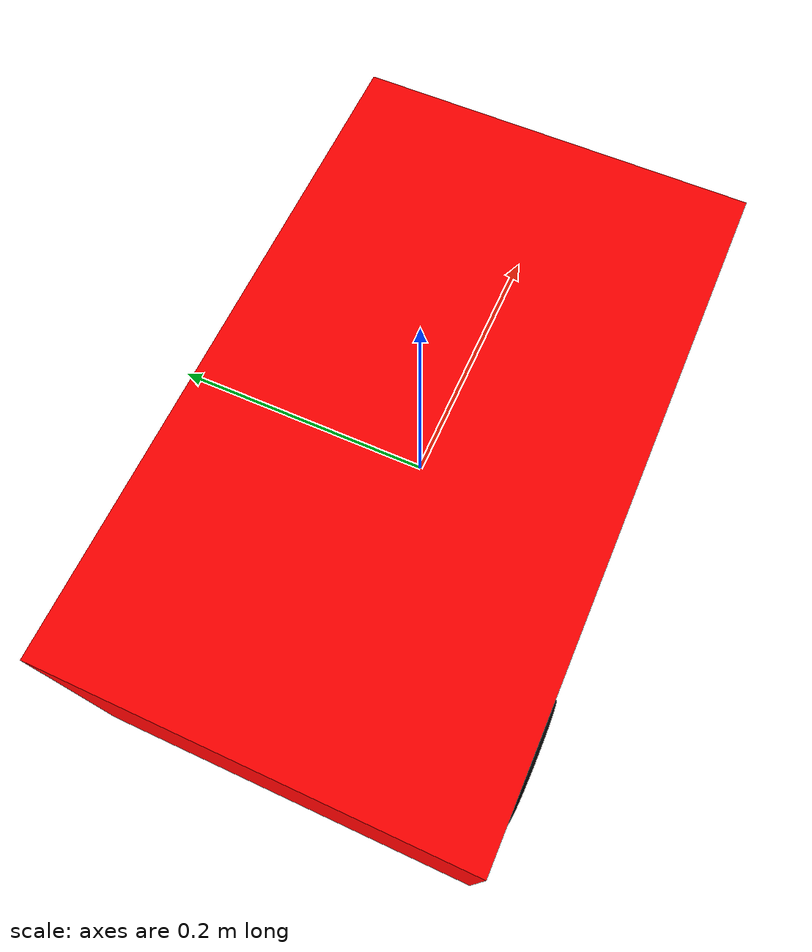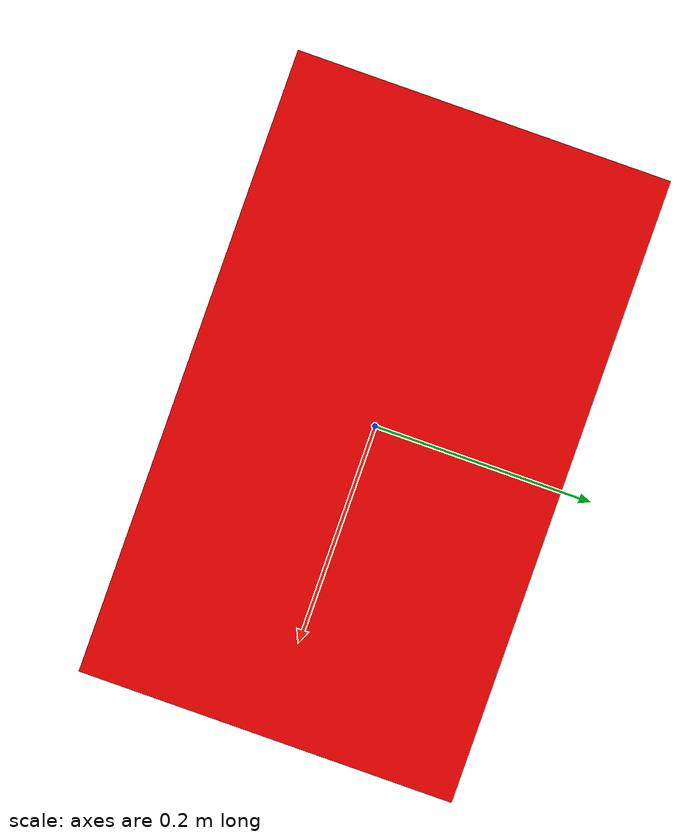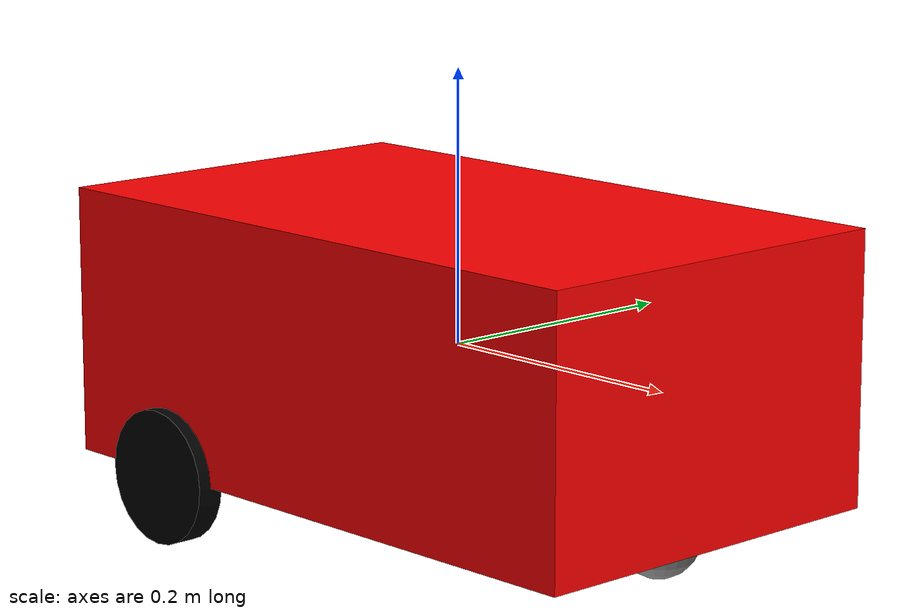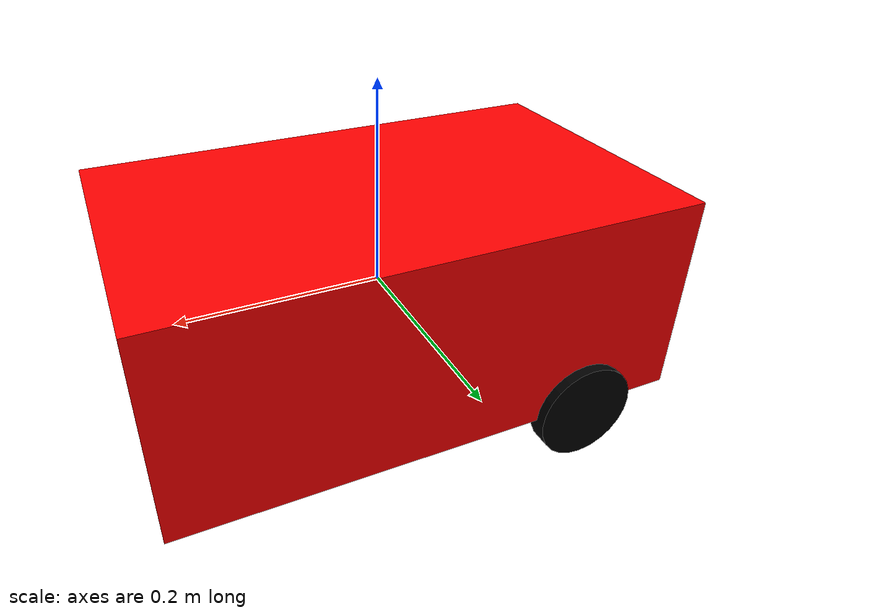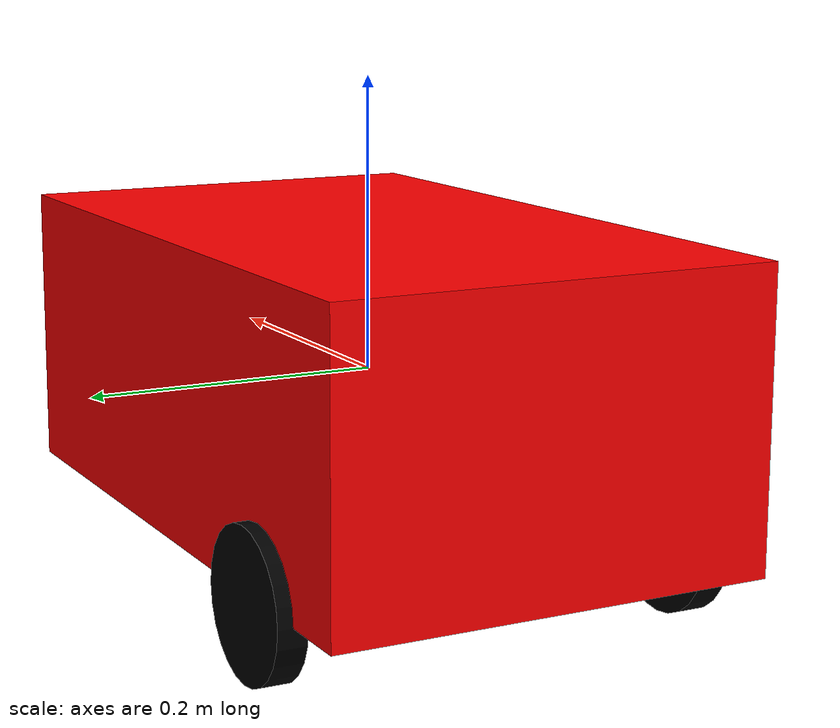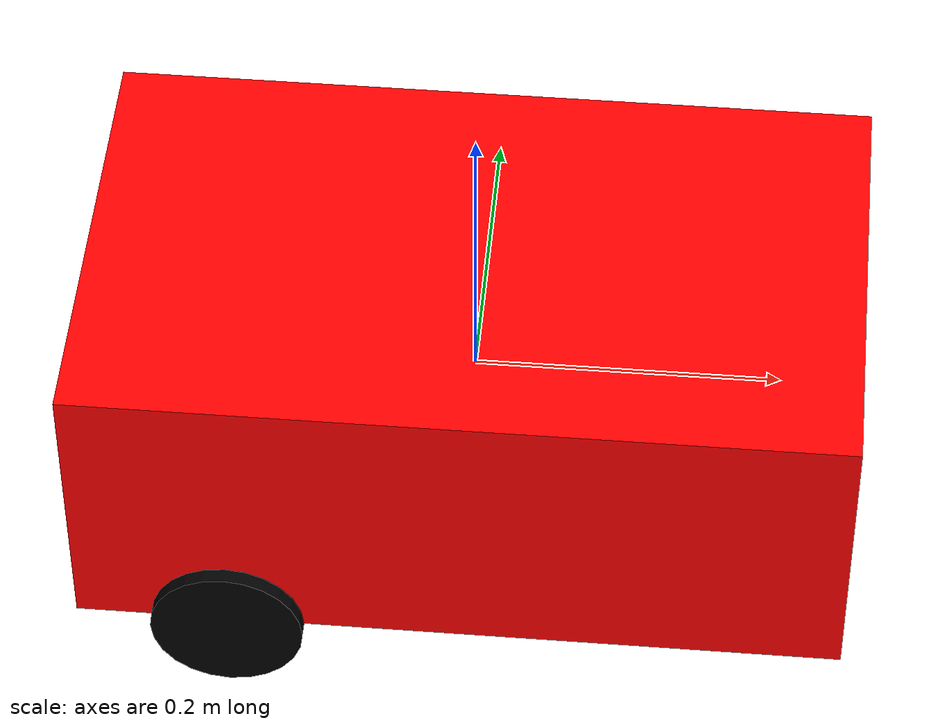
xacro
<?xml version="1.0"?>
<robot xmlns:xacro="http://ros.org/wiki/xacro" name="viv_bot" >

  <xacro:property name="pi" value="3.14159"/>

  <!-- Base Link -->
  <link name="base_link">
    <visual>
      <geometry>
        <box size="0.5 0.3 0.2"/>
      </geometry>
      <material name="red">
        <color rgba="1 0 0 1"/>
      </material>
    </visual>
    <collision>
      <geometry>
        <box size="0.5 0.3 0.2"/>
      </geometry>
    </collision>
    <inertial>
      <mass value="5"/>
      <inertia ixx="0.1" ixy="0.0" ixz="0.0"
               iyy="0.1" iyz="0.0"
               izz="0.1"/>
    </inertial>
  </link>

  <!-- Left Wheel -->
  <link name="left_wheel">
    <visual>
      <geometry>
        <cylinder radius="0.05" length="0.02"/>
      </geometry>
      <material name="black">
        <color rgba="0 0 0 1"/>
      </material>
    </visual>
    <collision>
      <geometry>
        <cylinder radius="0.05" length="0.02"/>
      </geometry>
    </collision>
    <inertial>
      <mass value="0.2"/>
      <inertia ixx="0.001" ixy="0" ixz="0"
               iyy="0.001" iyz="0"
               izz="0.001"/>
    </inertial>
  </link>

  <!-- Right Wheel -->
  <link name="right_wheel">
    <visual>
      <geometry>
        <cylinder radius="0.05" length="0.02"/>
      </geometry>
      <material name="black">
        <color rgba="0 0 0 1"/>
      </material>
    </visual>
    <collision>
      <geometry>
        <cylinder radius="0.05" length="0.02"/>
      </geometry>
    </collision>
    <inertial>
      <mass value="0.2"/>
      <inertia ixx="0.001" ixy="0" ixz="0"
               iyy="0.001" iyz="0"
               izz="0.001"/>
    </inertial>
  </link>

  <!-- Caster Wheel -->
  <link name="caster_wheel">
    <visual>
      <geometry>
        <sphere radius="0.03"/>
      </geometry>
      <material name="gray">
        <color rgba="0.5 0.5 0.5 1"/>
      </material>
    </visual>
    <collision>
      <geometry>
        <sphere radius="0.03"/>
      </geometry>
    </collision>
    <inertial>
      <mass value="0.1"/>
      <inertia ixx="0.0001" ixy="0" ixz="0"
               iyy="0.0001" iyz="0"
               izz="0.0001"/>
    </inertial>
  </link>

  <!-- Joints -->
  <joint name="left_wheel_joint" type="continuous">
    <parent link="base_link"/>
    <child link="left_wheel"/>
    <origin xyz="-0.15 -0.15 -0.1" rpy="-${pi/2} 0 0"/>
    <axis xyz="0 0 1"/>
  </joint>

  <joint name="right_wheel_joint" type="continuous">
    <parent link="base_link"/>
    <child link="right_wheel"/>
    <origin xyz="-0.15 0.15 -0.1" rpy="${pi/2} 0 0"/>
    <axis xyz="0 0 1"/>
  </joint>

  <joint name="caster_joint" type="fixed">
    <parent link="base_link"/>
    <child link="caster_wheel"/>
    <origin xyz="0.2 0 -0.1" rpy="0 0 0"/>
  </joint>

  <!-- Transmissions for ros2_control -->
  <transmission name="left_wheel_trans">
    <type>transmission_interface/SimpleTransmission</type>
    <joint name="left_wheel_joint">
      <hardwareInterface>hardware_interface/EffortJointInterface</hardwareInterface>
    </joint>
    <actuator name="left_wheel_motor">
      <hardwareInterface>hardware_interface/EffortJointInterface</hardwareInterface>
      <mechanicalReduction>1</mechanicalReduction>
    </actuator>
  </transmission>

  <transmission name="right_wheel_trans">
    <type>transmission_interface/SimpleTransmission</type>
    <joint name="right_wheel_joint">
      <hardwareInterface>hardware_interface/EffortJointInterface</hardwareInterface>
    </joint>
    <actuator name="right_wheel_motor">
      <hardwareInterface>hardware_interface/EffortJointInterface</hardwareInterface>
      <mechanicalReduction>1</mechanicalReduction>
    </actuator>
  </transmission>
<gazebo>
  <plugin name="diff_drive_controller" filename="libgazebo_ros_diff_drive.so">
    <ros>
      <namespace>/</namespace>
      <remapping>cmd_vel:=cmd_vel</remapping>
    </ros>

    <left_wheel_joint>left_wheel_joint</left_wheel_joint>
    <right_wheel_joint>right_wheel_joint</right_wheel_joint>

    <wheel_separation>0.3</wheel_separation>
    <wheel_diameter>0.1</wheel_diameter>

    <robot_base_frame>base_link</robot_base_frame>

    <odometry_frame>odom</odometry_frame>
    <odometry_topic>odom</odometry_topic>

    <publish_odometry>true</publish_odometry>
    <publish_odom_tf>true</publish_odom_tf>

    <command_timeout>0.5</command_timeout>

    <max_wheel_acceleration>10.0</max_wheel_acceleration>
    <max_wheel_velocity>10.0</max_wheel_velocity>
  </plugin>
</gazebo>

</robot>
